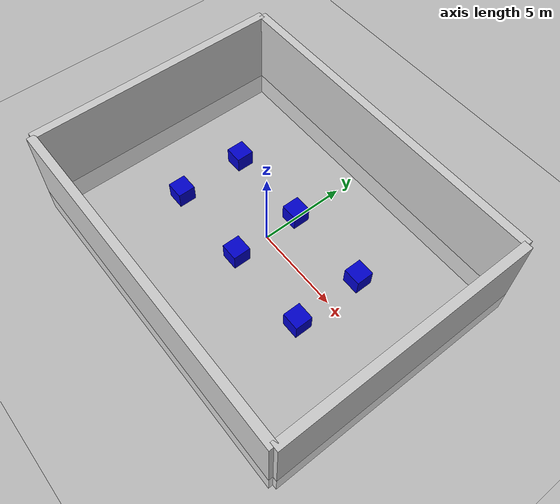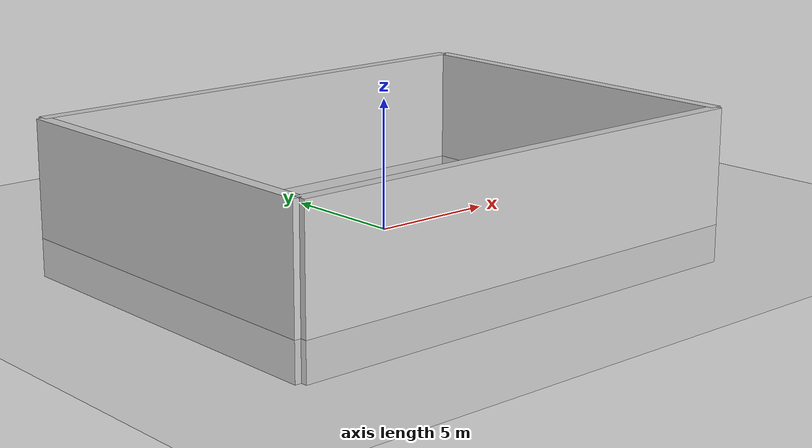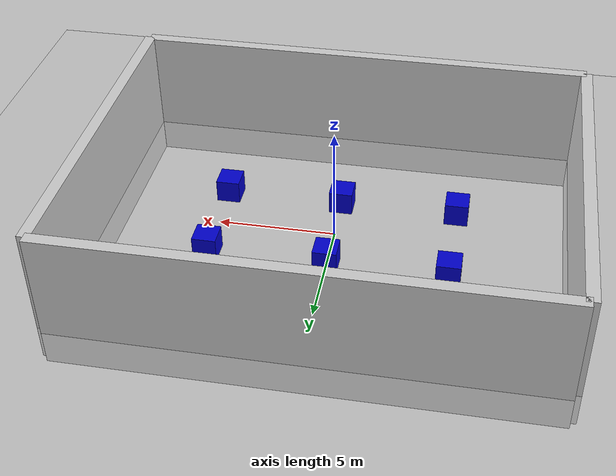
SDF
<?xml version="1.0" ?>
<sdf version="1.6">
  <world name="room_world">

    <!-- Add a ground plane -->
    <include>
      <uri>model://ground_plane</uri>
      <visual>
        <geometry>
          <plane size="50 50"/> <!-- Adjust size as needed -->
        </geometry>
        <material>
          <script>
            <uri>file://media/materials/scripts/gazebo.material</uri>
            <name>Gazebo/Gray</name>
          </script>
        </material>
      </visual>
      <collision>
        <geometry>
          <plane size="50 50"/>
        </geometry>
        <surface>
          <friction>
            <ode>
              <mu>1.0</mu>
              <mu2>1.0</mu2>
            </ode>
          </friction>
        </surface>
      </collision>
    </include>

    <!-- Add a light source -->
    <include>
      <uri>model://sun</uri>
    </include>

    <!-- Define Wall 1 -->
    <model name="wall_1">
      <static>true</static>
      <link name="link">
        <visual name="visual">
          <geometry>
            <box>
              <size>20 0.5 6</size> <!-- Length, Thickness, Height -->
            </box>
          </geometry>
          <material>
            <ambient>0.8 0.8 0.8 1</ambient>
            <diffuse>0.8 0.8 0.8 1</diffuse>
          </material>
        </visual>
        <collision name="collision">
          <geometry>
            <box>
              <size>20 0.5 6</size>
            </box>
          </geometry>
        </collision>
      </link>
      <pose>0 7.5 1.5 0 0 0</pose> <!-- Position (x, y, z), Rotation (roll, pitch, yaw) -->
    </model>

    <!-- Define Wall 2 -->
    <model name="wall_2">
      <static>true</static>
      <link name="link">
        <visual name="visual">
          <geometry>
            <box>
              <size>0.5 15 6</size> <!-- Length, Thickness, Height -->
            </box>
          </geometry>
          <material>
            <ambient>0.8 0.8 0.8 1</ambient>
            <diffuse>0.8 0.8 0.8 1</diffuse>
          </material>
        </visual>
        <collision name="collision">
          <geometry>
            <box>
              <size>0.5 15 6</size>
            </box>
          </geometry>
        </collision>
      </link>
      <pose>10 0 1.5 0 0 0</pose> <!-- Position (x, y, z), Rotation (roll, pitch, yaw) -->
    </model>

    <!-- Define Wall 3 -->
    <model name="wall_3">
      <static>true</static>
      <link name="link">
        <visual name="visual">
          <geometry>
            <box>
              <size>20 0.5 6</size>
            </box>
          </geometry>
          <material>
            <ambient>0.8 0.8 0.8 1</ambient>
            <diffuse>0.8 0.8 0.8 1</diffuse>
          </material>
        </visual>
        <collision name="collision">
          <geometry>
            <box>
              <size>20 0.5 6</size>
            </box>
          </geometry>
        </collision>
      </link>
      <pose>0 -7.5 1.5 0 0 0</pose> <!-- Position (x, y, z), Rotation (roll, pitch, yaw) -->
    </model>

    <!-- Define Wall 4 -->
    <model name="wall_4">
      <static>true</static>
      <link name="link">
        <visual name="visual">
          <geometry>
            <box>
              <size>0.5 15 6</size>
            </box>
          </geometry>
          <material>
            <ambient>0.8 0.8 0.8 1</ambient>
            <diffuse>0.8 0.8 0.8 1</diffuse>
          </material>
        </visual>
        <collision name="collision">
          <geometry>
            <box>
              <size>0.5 15 6</size>
            </box>
          </geometry>
        </collision>
      </link>
      <pose>-10 0 1.5 0 0 0</pose> <!-- Position (x, y, z), Rotation (roll, pitch, yaw) -->
    </model>

    <!-- Add Cube 1 -->
    <model name="cube_1">
      <static>true</static>
      <link name="link">
        <visual name="visual">
          <geometry>
            <box>
              <size>1 1 1</size> <!-- Length, Width, Height -->
            </box>
          </geometry>
          <material>
            <ambient>0 0 0.8 1</ambient>
            <diffuse>0 0 0.8 1</diffuse>
          </material>
        </visual>
        <collision name="collision">
          <geometry>
            <box>
              <size>1 1 1</size>
            </box>
          </geometry>
        </collision>
      </link>
      <pose>-5 -2 0.5 0 0 0</pose> <!-- Center of the room -->
    </model>

    <!-- Add Cube 2 -->
    <model name="cube_2">
      <static>true</static>
      <link name="link">
        <visual name="visual">
          <geometry>
            <box>
              <size>1 1 1 </size>
            </box>
          </geometry>
          <material>
            <ambient>0 0 0.8 1</ambient>
            <diffuse>0 0 0.8 1</diffuse>
          </material>
        </visual>
        <collision name="collision">
          <geometry>
            <box>
              <size>1 1 1</size>
            </box>
          </geometry>
        </collision>
      </link>
      <pose>-5 2 0.5 0 0 0</pose> <!-- Near one corner -->
    </model>

    <!-- Add Cube 3 -->
    <model name="cube_3">
      <static>true</static>
      <link name="link">
        <visual name="visual">
          <geometry>
            <box>
              <size>1 1 1</size>
            </box>
          </geometry>
          <material>
            <ambient>0 0 0.8 1</ambient>
            <diffuse>0 0 0.8 1</diffuse>
          </material>
        </visual>
        <collision name="collision">
          <geometry>
            <box>
              <size>1 1 1</size>
            </box>
          </geometry>
        </collision>
      </link>
      <pose>0 -2 0.5 0 0 0</pose> <!-- Near another corner -->
    </model>

        <!-- Add Cube 4 -->
    <model name="cube_4">
      <static>true</static>
      <link name="link">
        <visual name="visual">
          <geometry>
            <box>
              <size>1 1 1</size>
            </box>
          </geometry>
          <material>
            <ambient>0 0 0.8 1</ambient>
            <diffuse>0 0 0.8 1</diffuse>
          </material>
        </visual>
        <collision name="collision">
          <geometry>
            <box>
              <size>1 1 1</size>
            </box>
          </geometry>
        </collision>
      </link>
      <pose>0 2 0.5 0 0 0</pose> <!-- Near another corner -->
    </model>

       <!-- Add Cube 5 -->
    <model name="cube_5">
      <static>true</static>
      <link name="link">
        <visual name="visual">
          <geometry>
            <box>
              <size>1 1 1</size>
            </box>
          </geometry>
          <material>
            <ambient>0 0 0.8 1</ambient>
            <diffuse>0 0 0.8 1</diffuse>
          </material>
        </visual>
        <collision name="collision">
          <geometry>
            <box>
              <size>1 1 1</size>
            </box>
          </geometry>
        </collision>
      </link>
      <pose>5 -2 0.5 0 0 0</pose> <!-- Near another corner -->
    </model>

        <!-- Add Cube 6 -->
    <model name="cube_6">
      <static>true</static>
      <link name="link">
        <visual name="visual">
          <geometry>
            <box>
              <size>1 1 1</size>
            </box>
          </geometry>
          <material>
            <ambient>0 0 0.8 1</ambient>
            <diffuse>0 0 0.8 1</diffuse>
          </material>
        </visual>
        <collision name="collision">
          <geometry>
            <box>
              <size>1 1 1</size>
            </box>
          </geometry>
        </collision>
      </link>
      <pose>5 2 0.5 0 0 0</pose> <!-- Near another corner -->
    </model>

  </world>
</sdf>
